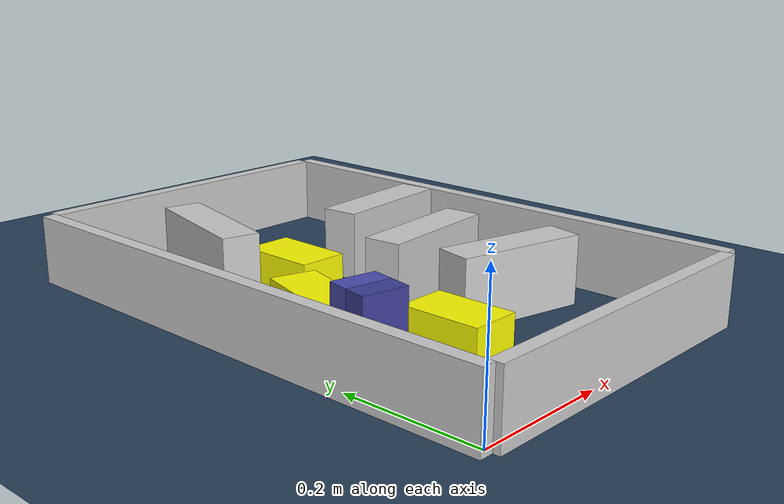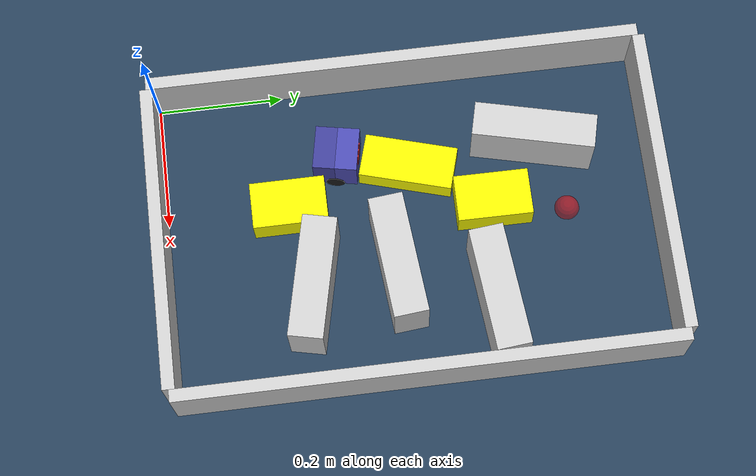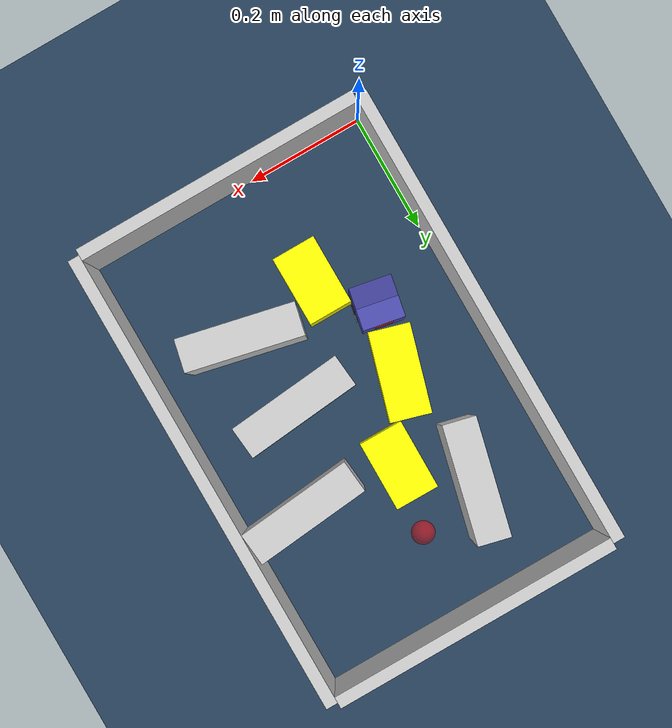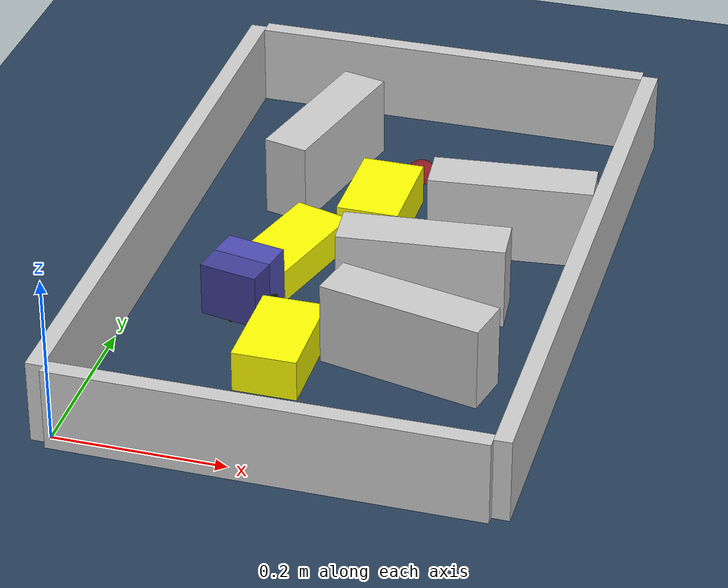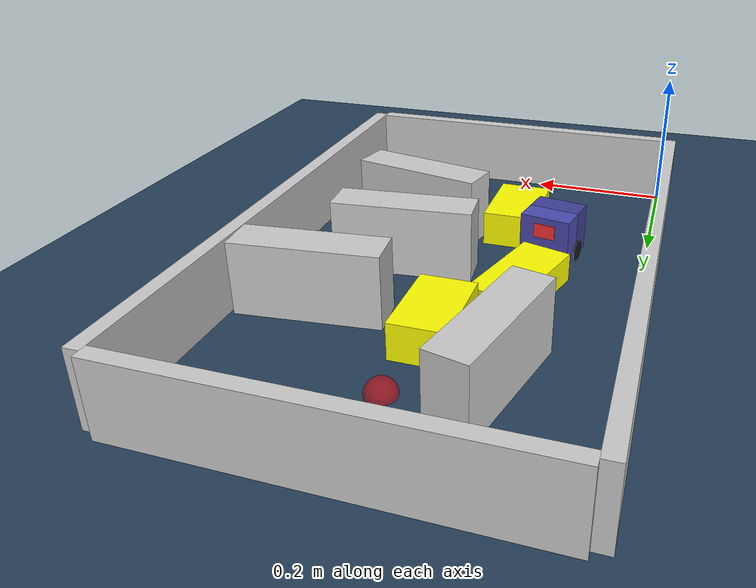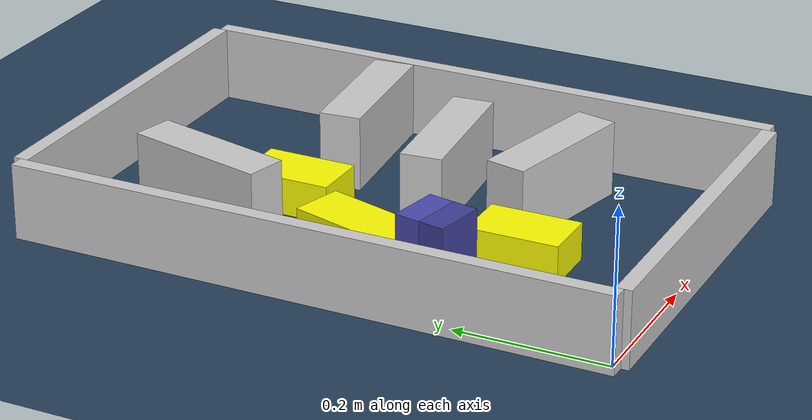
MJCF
<?xml version='1.0' encoding='utf-8'?>
<mujoco model="real_buildable">
  <compiler angle="degree" />
  <option timestep="0.002" integrator="implicitfast" iterations="100" cone="elliptic" />
  <default>
    <geom density="1" />
  </default>
  <asset>
    <texture builtin="gradient" height="3072" rgb1="0.3 0.5 0.7" rgb2="0 0 0" type="skybox" width="512" />
    <texture builtin="checker" height="300" mark="edge" markrgb="0.8 0.8 0.8" name="groundplane" rgb1="0.2 0.3 0.4" rgb2="0.1 0.2 0.3" type="2d" width="300" />
    <material name="groundplane" reflectance="0.2" texrepeat="5 5" texture="groundplane" texuniform="true" />
  </asset>
  <worldbody>
    <light dir="0 0 -1" directional="true" pos="0 0 1.5" />
    <geom name="floor" type="plane" condim="4" friction="0.5 0.005 0.001" material="groundplane" size="0 0 0.05" />
    <body name="walls">
      <geom name="wall_boundary_left" type="box" condim="4" friction="1.0 0.005 0.0001" rgba="0.8 0.8 0.8 1" pos="-0.010000 0.387500 0.050000" euler="0 0 0.000000" size="0.010000 0.397500 0.050000" />
      <geom name="wall_boundary_right" type="box" condim="4" friction="1.0 0.005 0.0001" rgba="0.8 0.8 0.8 1" pos="0.500000 0.387500 0.050000" euler="0 0 0.000000" size="0.010000 0.397500 0.050000" />
      <geom name="wall_boundary_bottom" type="box" condim="4" friction="1.0 0.005 0.0001" rgba="0.8 0.8 0.8 1" pos="0.245000 -0.010000 0.050000" euler="0 0 0.000000" size="0.245000 0.010000 0.050000" />
      <geom name="wall_boundary_top" type="box" condim="4" friction="1.0 0.005 0.0001" rgba="0.8 0.8 0.8 1" pos="0.245000 0.785000 0.050000" euler="0 0 0.000000" size="0.245000 0.010000 0.050000" />
      <geom name="wall_inner_1" type="box" condim="4" friction="1.0 0.005 0.0001" rgba="0.8 0.8 0.8 1" pos="0.339337 0.222667 0.050000" euler="0 0 -12.552249" size="0.097500 0.027500 0.050000" />
      <geom name="wall_inner_2" type="box" condim="4" friction="1.0 0.005 0.0001" rgba="0.8 0.8 0.8 1" pos="0.320465 0.357190 0.050000" euler="0 0 5.473397" size="0.097500 0.027500 0.050000" />
      <geom name="wall_inner_3" type="box" condim="4" friction="1.0 0.005 0.0001" rgba="0.8 0.8 0.8 1" pos="0.390000 0.506000 0.050000" euler="0 0 5.600000" size="0.097500 0.027500 0.050000" />
      <geom name="wall_inner_4" type="box" condim="4" friction="1.0 0.005 0.0001" rgba="0.8 0.8 0.8 1" pos="0.134000 0.597000 0.050000" euler="0 0 76.400000" size="0.097500 0.027500 0.050000" />
    </body>
    <body name="car" pos="0.12785013293638006 0.28068676698645023 0.01" quat="0.77036540195147807 0 0 0.63760265642180136">
      <freejoint name="car_freejoint" />
      <inertial pos="0 0 0.0375" mass="0.35" diaginertia="0.000266 0.000266 0.000286" />
      <geom name="front_chassis_collision" type="box" pos="0.0175 0 0.0375" size="0.0175 0.035 0.0325" rgba="0.3 0.3 0.7 1" />
      <geom name="rear_chassis_collision" type="box" pos="-0.0175 0 0.0375" size="0.0175 0.035 0.0325" rgba="0.25 0.25 0.6 1" />
      <geom name="front_marker" type="box" pos="0.034 0 0.0505" size="0.002 0.015 0.01" rgba="1 0.2 0.2 1" contype="0" conaffinity="0" />
      <body name="rear_support_body" pos="-0.03 0 0.0025">
        <joint name="rear_caster_joint" type="ball" damping="0.0001" />
        <inertial pos="0 0 0" mass="0.025" diaginertia="0.000001 0.000001 0.000001" />
        <geom name="rear_support" type="sphere" pos="0 0 0" size="0.0025" friction="0 0 0" rgba="0.7 0.1 0.1 1" />
      </body>
      <body name="front_support_body" pos="0.03 0 0.0025">
        <joint name="front_caster_joint" type="ball" damping="0.0001" />
        <inertial pos="0 0 0" mass="0.025" diaginertia="0.000001 0.000001 0.000001" />
        <geom name="front_support" type="sphere" pos="0 0 0" size="0.0025" friction="0 0 0" rgba="0.1 0.7 0.1 1" />
      </body>
      <body name="left_wheel" pos="0 0.0375 0.015">
        <inertial pos="0 0 0" mass="0.05" diaginertia="0.000003 0.000006 0.000003" />
        <joint name="left_wheel_joint" type="hinge" axis="0 1 0" damping="0.01" armature="0.0001" />
        <geom name="left_wheel_collision" type="cylinder" size="0.015 0.0005" euler="90 0 0" rgba="0.1 0.1 0.1 1" />
      </body>
      <body name="right_wheel" pos="0 -0.0375 0.015">
        <inertial pos="0 0 0" mass="0.05" diaginertia="0.000003 0.000006 0.000003" />
        <joint name="right_wheel_joint" type="hinge" axis="0 1 0" damping="0.01" armature="0.0001" />
        <geom name="right_wheel_collision" type="cylinder" size="0.015 0.0005" euler="90 0 0" rgba="0.1 0.1 0.1 1" />
      </body>
    </body>
    <body name="obstacle_0_movable">
      <geom name="obstacle_0_movable" condim="4" pos="0.14903957174300173 0.39352918904437495 0.02" friction="1 0.005 0.0001" rgba="1 1 0 1" size="0.035000 0.075000 0.020000" type="box" mass="0.1" quat="0.14093101233321051 0 0 0.99001941888163814" />
      <joint type="free" />
    </body>
    <body name="obstacle_1_movable">
      <geom name="obstacle_1_movable" condim="4" pos="0.22494671956931361 0.52038650762162031 0.025000000000000001" friction="1 0.005 0.0001" rgba="1 1 0 1" size="0.037500 0.060000 0.025000" type="box" mass="0.1" quat="0.99999656217240118 0 0 -0.0026221448051191192" />
      <joint type="free" />
    </body>
    <body name="obstacle_2_movable">
      <geom name="obstacle_2_movable" condim="4" pos="0.19759818881359167 0.19617812250943362 0.025000000000000001" friction="1 0.005 0.0001" rgba="1 1 0 1" size="0.037500 0.060000 0.025000" type="box" mass="0.1" quat="0.99999911788673812 0 0 0.0013282415990913076" />
      <joint type="free" />
    </body>
    <site name="goal" type="sphere" pos="0.245000 0.640000 0.0" size="0.02" rgba="1 0 0 0.5" />
  </worldbody>
  <actuator>
    <velocity name="left_wheel_drive" joint="left_wheel_joint" ctrlrange="-25 25" kv="0.75" forcerange="-0.5 0.5" />
    <velocity name="right_wheel_drive" joint="right_wheel_joint" ctrlrange="-25 25" kv="0.75" forcerange="-0.5 0.5" />
  </actuator>
</mujoco>
